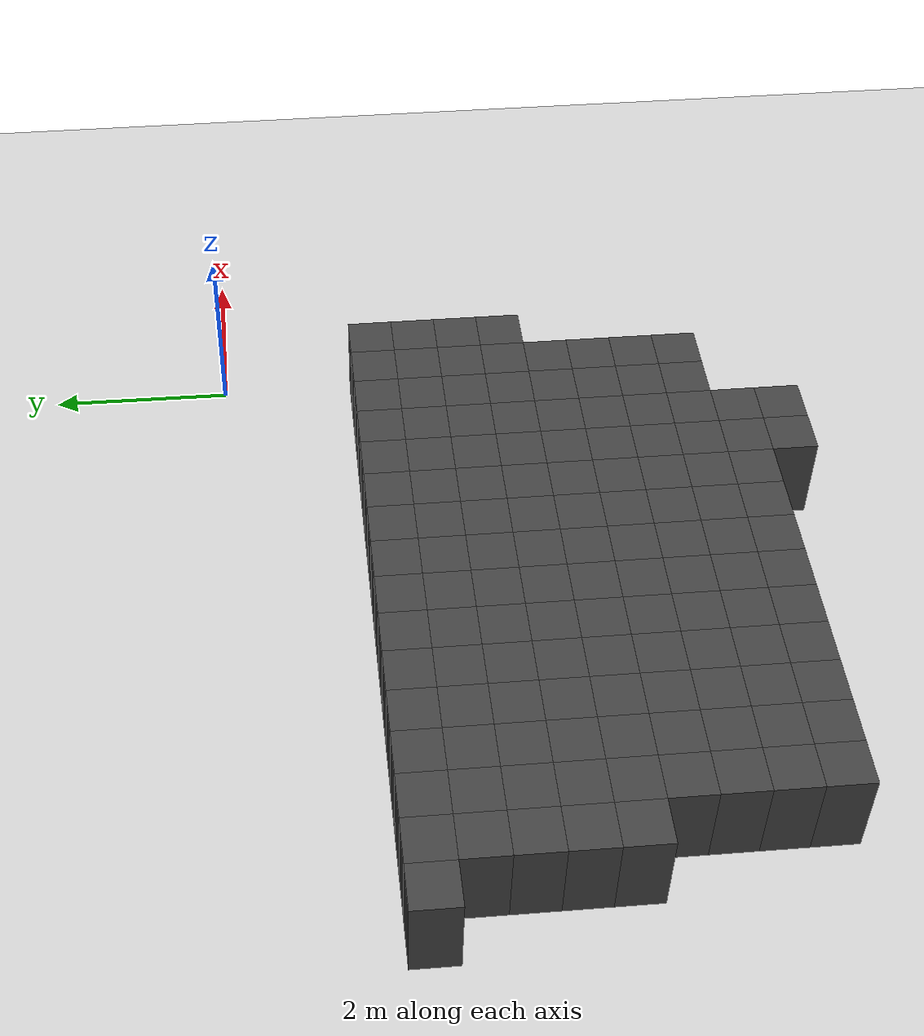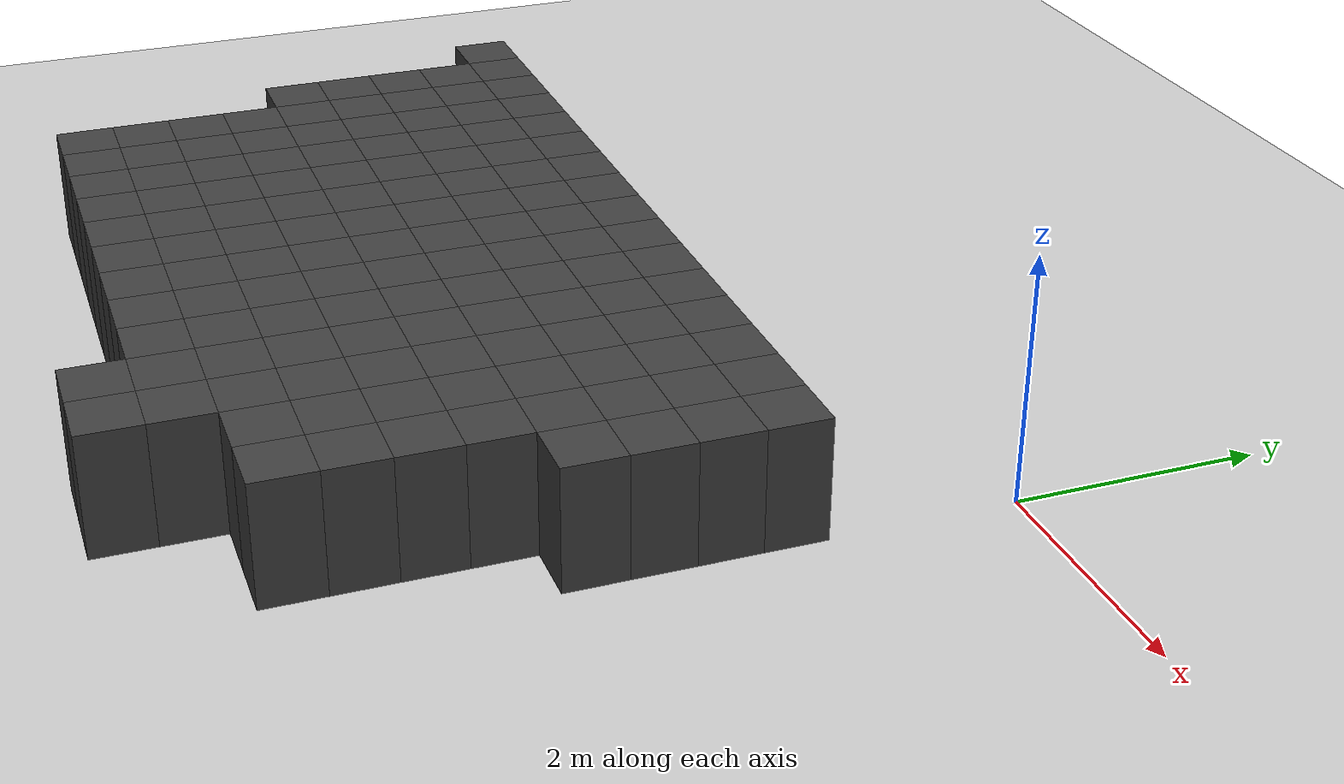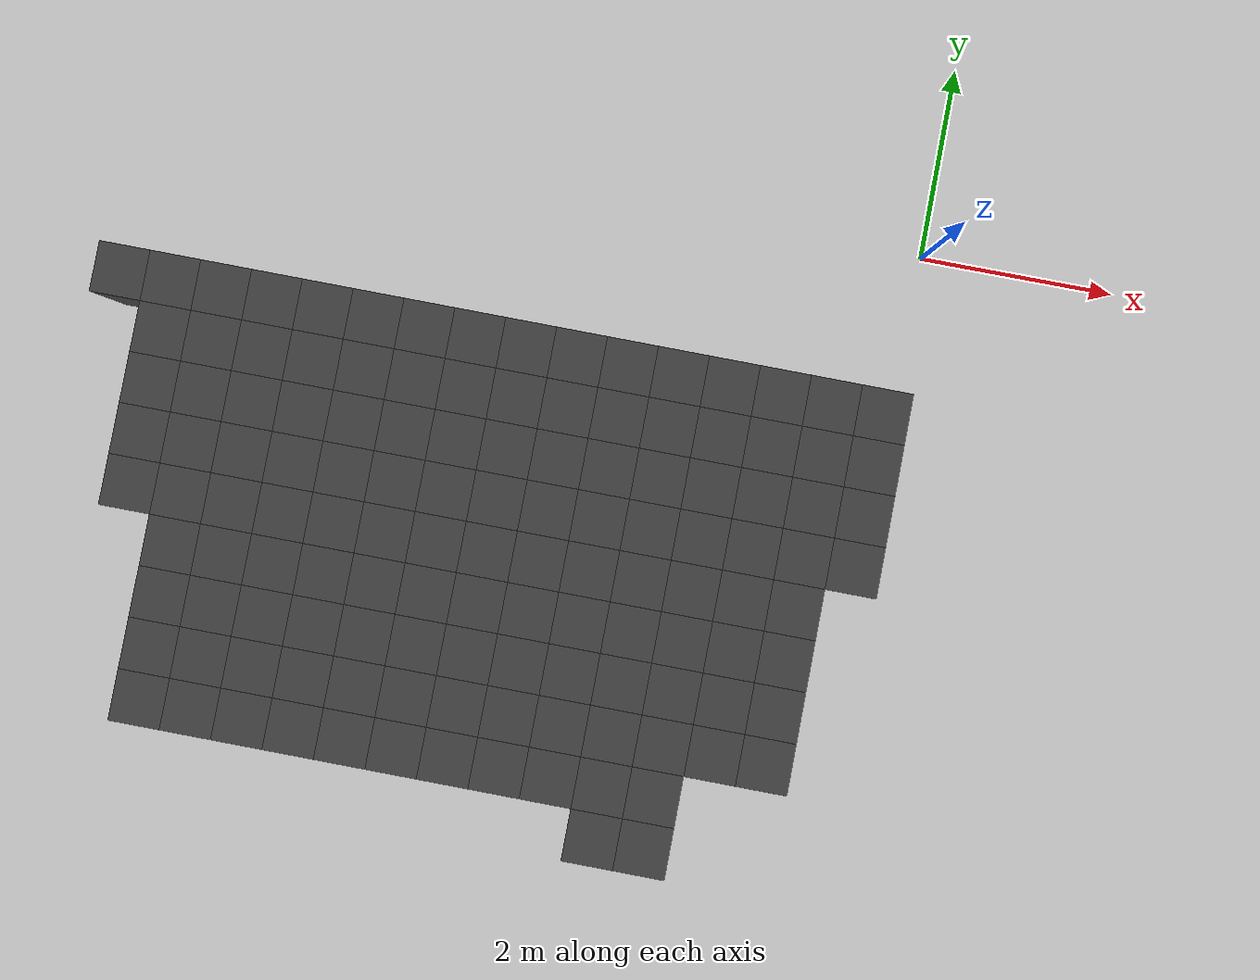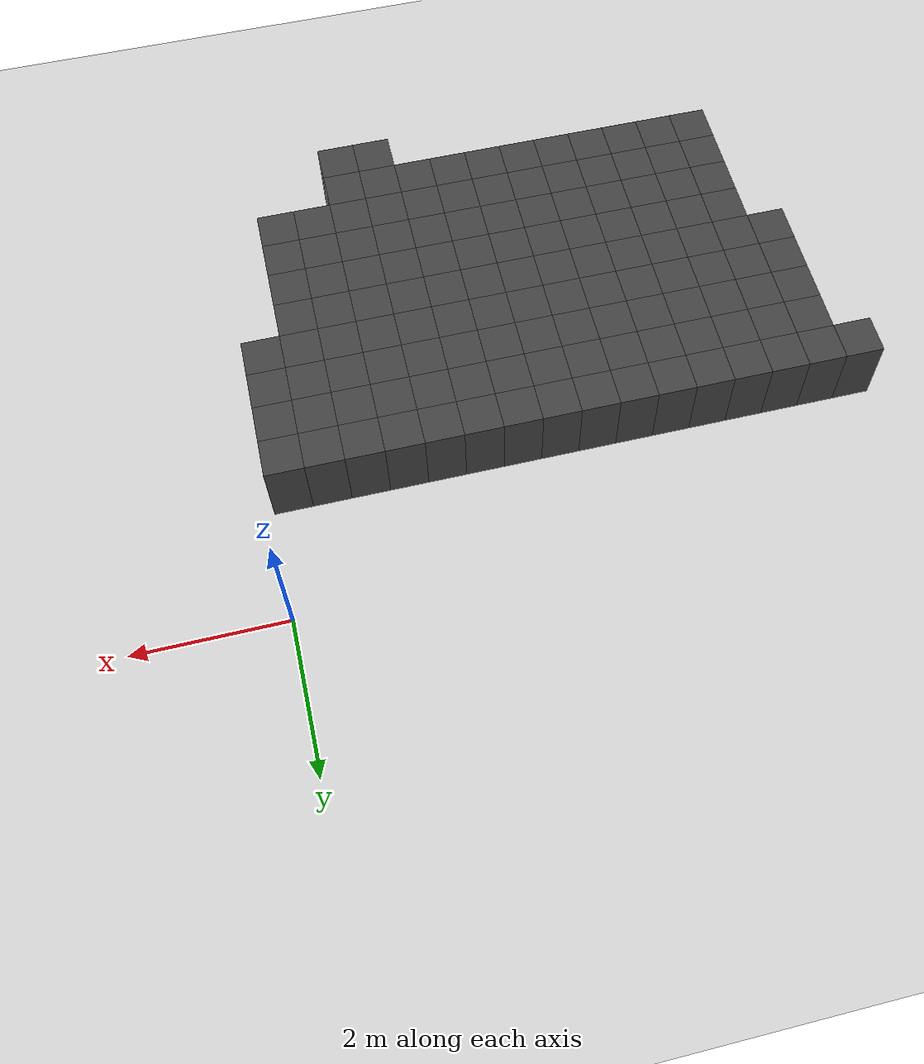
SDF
<sdf version="1.7">
 <world name="map_14056">
  <model name="ground_plane">
   <static>true</static>
   <link name="link">
    <collision name="collision">
     <geometry><plane><normal>0 0 1</normal><size>200 200</size></plane></geometry>
    </collision>
    <visual name="visual">
     <geometry><plane><normal>0 0 1</normal><size>200 200</size></plane></geometry>
     <material><ambient>0.8 0.8 0.8 1</ambient><diffuse>0.8 0.8 0.8 1</diffuse></material>
    </visual>
   </link>
  </model>
  <model name="maze_environment">
   <static>true</static>
   <link name="wall_1009">
    <pose>-7.750 -1.750 0.500 0 0 0</pose>
    <collision name="col"><geometry><box><size>0.5 0.5 1.0</size></box></geometry></collision>
    <visual name="vis">
     <geometry><box><size>0.5 0.5 1.0</size></box></geometry>
     <material><ambient>0.15 0.15 0.15 1</ambient><diffuse>0.25 0.25 0.25 1</diffuse></material>
    </visual>
   </link>
   <link name="wall_1010">
    <pose>-7.250 -1.750 0.500 0 0 0</pose>
    <collision name="col"><geometry><box><size>0.5 0.5 1.0</size></box></geometry></collision>
    <visual name="vis">
     <geometry><box><size>0.5 0.5 1.0</size></box></geometry>
     <material><ambient>0.15 0.15 0.15 1</ambient><diffuse>0.25 0.25 0.25 1</diffuse></material>
    </visual>
   </link>
   <link name="wall_1011">
    <pose>-6.750 -1.750 0.500 0 0 0</pose>
    <collision name="col"><geometry><box><size>0.5 0.5 1.0</size></box></geometry></collision>
    <visual name="vis">
     <geometry><box><size>0.5 0.5 1.0</size></box></geometry>
     <material><ambient>0.15 0.15 0.15 1</ambient><diffuse>0.25 0.25 0.25 1</diffuse></material>
    </visual>
   </link>
   <link name="wall_1012">
    <pose>-6.250 -1.750 0.500 0 0 0</pose>
    <collision name="col"><geometry><box><size>0.5 0.5 1.0</size></box></geometry></collision>
    <visual name="vis">
     <geometry><box><size>0.5 0.5 1.0</size></box></geometry>
     <material><ambient>0.15 0.15 0.15 1</ambient><diffuse>0.25 0.25 0.25 1</diffuse></material>
    </visual>
   </link>
   <link name="wall_1013">
    <pose>-5.750 -1.750 0.500 0 0 0</pose>
    <collision name="col"><geometry><box><size>0.5 0.5 1.0</size></box></geometry></collision>
    <visual name="vis">
     <geometry><box><size>0.5 0.5 1.0</size></box></geometry>
     <material><ambient>0.15 0.15 0.15 1</ambient><diffuse>0.25 0.25 0.25 1</diffuse></material>
    </visual>
   </link>
   <link name="wall_1014">
    <pose>-5.250 -1.750 0.500 0 0 0</pose>
    <collision name="col"><geometry><box><size>0.5 0.5 1.0</size></box></geometry></collision>
    <visual name="vis">
     <geometry><box><size>0.5 0.5 1.0</size></box></geometry>
     <material><ambient>0.15 0.15 0.15 1</ambient><diffuse>0.25 0.25 0.25 1</diffuse></material>
    </visual>
   </link>
   <link name="wall_1015">
    <pose>-4.750 -1.750 0.500 0 0 0</pose>
    <collision name="col"><geometry><box><size>0.5 0.5 1.0</size></box></geometry></collision>
    <visual name="vis">
     <geometry><box><size>0.5 0.5 1.0</size></box></geometry>
     <material><ambient>0.15 0.15 0.15 1</ambient><diffuse>0.25 0.25 0.25 1</diffuse></material>
    </visual>
   </link>
   <link name="wall_1016">
    <pose>-4.250 -1.750 0.500 0 0 0</pose>
    <collision name="col"><geometry><box><size>0.5 0.5 1.0</size></box></geometry></collision>
    <visual name="vis">
     <geometry><box><size>0.5 0.5 1.0</size></box></geometry>
     <material><ambient>0.15 0.15 0.15 1</ambient><diffuse>0.25 0.25 0.25 1</diffuse></material>
    </visual>
   </link>
   <link name="wall_1017">
    <pose>-3.750 -1.750 0.500 0 0 0</pose>
    <collision name="col"><geometry><box><size>0.5 0.5 1.0</size></box></geometry></collision>
    <visual name="vis">
     <geometry><box><size>0.5 0.5 1.0</size></box></geometry>
     <material><ambient>0.15 0.15 0.15 1</ambient><diffuse>0.25 0.25 0.25 1</diffuse></material>
    </visual>
   </link>
   <link name="wall_1018">
    <pose>-3.250 -1.750 0.500 0 0 0</pose>
    <collision name="col"><geometry><box><size>0.5 0.5 1.0</size></box></geometry></collision>
    <visual name="vis">
     <geometry><box><size>0.5 0.5 1.0</size></box></geometry>
     <material><ambient>0.15 0.15 0.15 1</ambient><diffuse>0.25 0.25 0.25 1</diffuse></material>
    </visual>
   </link>
   <link name="wall_1019">
    <pose>-2.750 -1.750 0.500 0 0 0</pose>
    <collision name="col"><geometry><box><size>0.5 0.5 1.0</size></box></geometry></collision>
    <visual name="vis">
     <geometry><box><size>0.5 0.5 1.0</size></box></geometry>
     <material><ambient>0.15 0.15 0.15 1</ambient><diffuse>0.25 0.25 0.25 1</diffuse></material>
    </visual>
   </link>
   <link name="wall_1020">
    <pose>-2.250 -1.750 0.500 0 0 0</pose>
    <collision name="col"><geometry><box><size>0.5 0.5 1.0</size></box></geometry></collision>
    <visual name="vis">
     <geometry><box><size>0.5 0.5 1.0</size></box></geometry>
     <material><ambient>0.15 0.15 0.15 1</ambient><diffuse>0.25 0.25 0.25 1</diffuse></material>
    </visual>
   </link>
   <link name="wall_1021">
    <pose>-1.750 -1.750 0.500 0 0 0</pose>
    <collision name="col"><geometry><box><size>0.5 0.5 1.0</size></box></geometry></collision>
    <visual name="vis">
     <geometry><box><size>0.5 0.5 1.0</size></box></geometry>
     <material><ambient>0.15 0.15 0.15 1</ambient><diffuse>0.25 0.25 0.25 1</diffuse></material>
    </visual>
   </link>
   <link name="wall_1022">
    <pose>-1.250 -1.750 0.500 0 0 0</pose>
    <collision name="col"><geometry><box><size>0.5 0.5 1.0</size></box></geometry></collision>
    <visual name="vis">
     <geometry><box><size>0.5 0.5 1.0</size></box></geometry>
     <material><ambient>0.15 0.15 0.15 1</ambient><diffuse>0.25 0.25 0.25 1</diffuse></material>
    </visual>
   </link>
   <link name="wall_1023">
    <pose>-0.750 -1.750 0.500 0 0 0</pose>
    <collision name="col"><geometry><box><size>0.5 0.5 1.0</size></box></geometry></collision>
    <visual name="vis">
     <geometry><box><size>0.5 0.5 1.0</size></box></geometry>
     <material><ambient>0.15 0.15 0.15 1</ambient><diffuse>0.25 0.25 0.25 1</diffuse></material>
    </visual>
   </link>
   <link name="wall_1024">
    <pose>-0.250 -1.750 0.500 0 0 0</pose>
    <collision name="col"><geometry><box><size>0.5 0.5 1.0</size></box></geometry></collision>
    <visual name="vis">
     <geometry><box><size>0.5 0.5 1.0</size></box></geometry>
     <material><ambient>0.15 0.15 0.15 1</ambient><diffuse>0.25 0.25 0.25 1</diffuse></material>
    </visual>
   </link>
   <link name="wall_1051">
    <pose>-7.250 -2.250 0.500 0 0 0</pose>
    <collision name="col"><geometry><box><size>0.5 0.5 1.0</size></box></geometry></collision>
    <visual name="vis">
     <geometry><box><size>0.5 0.5 1.0</size></box></geometry>
     <material><ambient>0.15 0.15 0.15 1</ambient><diffuse>0.25 0.25 0.25 1</diffuse></material>
    </visual>
   </link>
   <link name="wall_1052">
    <pose>-6.750 -2.250 0.500 0 0 0</pose>
    <collision name="col"><geometry><box><size>0.5 0.5 1.0</size></box></geometry></collision>
    <visual name="vis">
     <geometry><box><size>0.5 0.5 1.0</size></box></geometry>
     <material><ambient>0.15 0.15 0.15 1</ambient><diffuse>0.25 0.25 0.25 1</diffuse></material>
    </visual>
   </link>
   <link name="wall_1053">
    <pose>-6.250 -2.250 0.500 0 0 0</pose>
    <collision name="col"><geometry><box><size>0.5 0.5 1.0</size></box></geometry></collision>
    <visual name="vis">
     <geometry><box><size>0.5 0.5 1.0</size></box></geometry>
     <material><ambient>0.15 0.15 0.15 1</ambient><diffuse>0.25 0.25 0.25 1</diffuse></material>
    </visual>
   </link>
   <link name="wall_1054">
    <pose>-5.750 -2.250 0.500 0 0 0</pose>
    <collision name="col"><geometry><box><size>0.5 0.5 1.0</size></box></geometry></collision>
    <visual name="vis">
     <geometry><box><size>0.5 0.5 1.0</size></box></geometry>
     <material><ambient>0.15 0.15 0.15 1</ambient><diffuse>0.25 0.25 0.25 1</diffuse></material>
    </visual>
   </link>
   <link name="wall_1055">
    <pose>-5.250 -2.250 0.500 0 0 0</pose>
    <collision name="col"><geometry><box><size>0.5 0.5 1.0</size></box></geometry></collision>
    <visual name="vis">
     <geometry><box><size>0.5 0.5 1.0</size></box></geometry>
     <material><ambient>0.15 0.15 0.15 1</ambient><diffuse>0.25 0.25 0.25 1</diffuse></material>
    </visual>
   </link>
   <link name="wall_1056">
    <pose>-4.750 -2.250 0.500 0 0 0</pose>
    <collision name="col"><geometry><box><size>0.5 0.5 1.0</size></box></geometry></collision>
    <visual name="vis">
     <geometry><box><size>0.5 0.5 1.0</size></box></geometry>
     <material><ambient>0.15 0.15 0.15 1</ambient><diffuse>0.25 0.25 0.25 1</diffuse></material>
    </visual>
   </link>
   <link name="wall_1057">
    <pose>-4.250 -2.250 0.500 0 0 0</pose>
    <collision name="col"><geometry><box><size>0.5 0.5 1.0</size></box></geometry></collision>
    <visual name="vis">
     <geometry><box><size>0.5 0.5 1.0</size></box></geometry>
     <material><ambient>0.15 0.15 0.15 1</ambient><diffuse>0.25 0.25 0.25 1</diffuse></material>
    </visual>
   </link>
   <link name="wall_1058">
    <pose>-3.750 -2.250 0.500 0 0 0</pose>
    <collision name="col"><geometry><box><size>0.5 0.5 1.0</size></box></geometry></collision>
    <visual name="vis">
     <geometry><box><size>0.5 0.5 1.0</size></box></geometry>
     <material><ambient>0.15 0.15 0.15 1</ambient><diffuse>0.25 0.25 0.25 1</diffuse></material>
    </visual>
   </link>
   <link name="wall_1059">
    <pose>-3.250 -2.250 0.500 0 0 0</pose>
    <collision name="col"><geometry><box><size>0.5 0.5 1.0</size></box></geometry></collision>
    <visual name="vis">
     <geometry><box><size>0.5 0.5 1.0</size></box></geometry>
     <material><ambient>0.15 0.15 0.15 1</ambient><diffuse>0.25 0.25 0.25 1</diffuse></material>
    </visual>
   </link>
   <link name="wall_1060">
    <pose>-2.750 -2.250 0.500 0 0 0</pose>
    <collision name="col"><geometry><box><size>0.5 0.5 1.0</size></box></geometry></collision>
    <visual name="vis">
     <geometry><box><size>0.5 0.5 1.0</size></box></geometry>
     <material><ambient>0.15 0.15 0.15 1</ambient><diffuse>0.25 0.25 0.25 1</diffuse></material>
    </visual>
   </link>
   <link name="wall_1061">
    <pose>-2.250 -2.250 0.500 0 0 0</pose>
    <collision name="col"><geometry><box><size>0.5 0.5 1.0</size></box></geometry></collision>
    <visual name="vis">
     <geometry><box><size>0.5 0.5 1.0</size></box></geometry>
     <material><ambient>0.15 0.15 0.15 1</ambient><diffuse>0.25 0.25 0.25 1</diffuse></material>
    </visual>
   </link>
   <link name="wall_1062">
    <pose>-1.750 -2.250 0.500 0 0 0</pose>
    <collision name="col"><geometry><box><size>0.5 0.5 1.0</size></box></geometry></collision>
    <visual name="vis">
     <geometry><box><size>0.5 0.5 1.0</size></box></geometry>
     <material><ambient>0.15 0.15 0.15 1</ambient><diffuse>0.25 0.25 0.25 1</diffuse></material>
    </visual>
   </link>
   <link name="wall_1063">
    <pose>-1.250 -2.250 0.500 0 0 0</pose>
    <collision name="col"><geometry><box><size>0.5 0.5 1.0</size></box></geometry></collision>
    <visual name="vis">
     <geometry><box><size>0.5 0.5 1.0</size></box></geometry>
     <material><ambient>0.15 0.15 0.15 1</ambient><diffuse>0.25 0.25 0.25 1</diffuse></material>
    </visual>
   </link>
   <link name="wall_1064">
    <pose>-0.750 -2.250 0.500 0 0 0</pose>
    <collision name="col"><geometry><box><size>0.5 0.5 1.0</size></box></geometry></collision>
    <visual name="vis">
     <geometry><box><size>0.5 0.5 1.0</size></box></geometry>
     <material><ambient>0.15 0.15 0.15 1</ambient><diffuse>0.25 0.25 0.25 1</diffuse></material>
    </visual>
   </link>
   <link name="wall_1065">
    <pose>-0.250 -2.250 0.500 0 0 0</pose>
    <collision name="col"><geometry><box><size>0.5 0.5 1.0</size></box></geometry></collision>
    <visual name="vis">
     <geometry><box><size>0.5 0.5 1.0</size></box></geometry>
     <material><ambient>0.15 0.15 0.15 1</ambient><diffuse>0.25 0.25 0.25 1</diffuse></material>
    </visual>
   </link>
   <link name="wall_1079">
    <pose>-7.250 -2.750 0.500 0 0 0</pose>
    <collision name="col"><geometry><box><size>0.5 0.5 1.0</size></box></geometry></collision>
    <visual name="vis">
     <geometry><box><size>0.5 0.5 1.0</size></box></geometry>
     <material><ambient>0.15 0.15 0.15 1</ambient><diffuse>0.25 0.25 0.25 1</diffuse></material>
    </visual>
   </link>
   <link name="wall_1080">
    <pose>-6.750 -2.750 0.500 0 0 0</pose>
    <collision name="col"><geometry><box><size>0.5 0.5 1.0</size></box></geometry></collision>
    <visual name="vis">
     <geometry><box><size>0.5 0.5 1.0</size></box></geometry>
     <material><ambient>0.15 0.15 0.15 1</ambient><diffuse>0.25 0.25 0.25 1</diffuse></material>
    </visual>
   </link>
   <link name="wall_1081">
    <pose>-6.250 -2.750 0.500 0 0 0</pose>
    <collision name="col"><geometry><box><size>0.5 0.5 1.0</size></box></geometry></collision>
    <visual name="vis">
     <geometry><box><size>0.5 0.5 1.0</size></box></geometry>
     <material><ambient>0.15 0.15 0.15 1</ambient><diffuse>0.25 0.25 0.25 1</diffuse></material>
    </visual>
   </link>
   <link name="wall_1082">
    <pose>-5.750 -2.750 0.500 0 0 0</pose>
    <collision name="col"><geometry><box><size>0.5 0.5 1.0</size></box></geometry></collision>
    <visual name="vis">
     <geometry><box><size>0.5 0.5 1.0</size></box></geometry>
     <material><ambient>0.15 0.15 0.15 1</ambient><diffuse>0.25 0.25 0.25 1</diffuse></material>
    </visual>
   </link>
   <link name="wall_1083">
    <pose>-5.250 -2.750 0.500 0 0 0</pose>
    <collision name="col"><geometry><box><size>0.5 0.5 1.0</size></box></geometry></collision>
    <visual name="vis">
     <geometry><box><size>0.5 0.5 1.0</size></box></geometry>
     <material><ambient>0.15 0.15 0.15 1</ambient><diffuse>0.25 0.25 0.25 1</diffuse></material>
    </visual>
   </link>
   <link name="wall_1084">
    <pose>-4.750 -2.750 0.500 0 0 0</pose>
    <collision name="col"><geometry><box><size>0.5 0.5 1.0</size></box></geometry></collision>
    <visual name="vis">
     <geometry><box><size>0.5 0.5 1.0</size></box></geometry>
     <material><ambient>0.15 0.15 0.15 1</ambient><diffuse>0.25 0.25 0.25 1</diffuse></material>
    </visual>
   </link>
   <link name="wall_1085">
    <pose>-4.250 -2.750 0.500 0 0 0</pose>
    <collision name="col"><geometry><box><size>0.5 0.5 1.0</size></box></geometry></collision>
    <visual name="vis">
     <geometry><box><size>0.5 0.5 1.0</size></box></geometry>
     <material><ambient>0.15 0.15 0.15 1</ambient><diffuse>0.25 0.25 0.25 1</diffuse></material>
    </visual>
   </link>
   <link name="wall_1086">
    <pose>-3.750 -2.750 0.500 0 0 0</pose>
    <collision name="col"><geometry><box><size>0.5 0.5 1.0</size></box></geometry></collision>
    <visual name="vis">
     <geometry><box><size>0.5 0.5 1.0</size></box></geometry>
     <material><ambient>0.15 0.15 0.15 1</ambient><diffuse>0.25 0.25 0.25 1</diffuse></material>
    </visual>
   </link>
   <link name="wall_1087">
    <pose>-3.250 -2.750 0.500 0 0 0</pose>
    <collision name="col"><geometry><box><size>0.5 0.5 1.0</size></box></geometry></collision>
    <visual name="vis">
     <geometry><box><size>0.5 0.5 1.0</size></box></geometry>
     <material><ambient>0.15 0.15 0.15 1</ambient><diffuse>0.25 0.25 0.25 1</diffuse></material>
    </visual>
   </link>
   <link name="wall_1088">
    <pose>-2.750 -2.750 0.500 0 0 0</pose>
    <collision name="col"><geometry><box><size>0.5 0.5 1.0</size></box></geometry></collision>
    <visual name="vis">
     <geometry><box><size>0.5 0.5 1.0</size></box></geometry>
     <material><ambient>0.15 0.15 0.15 1</ambient><diffuse>0.25 0.25 0.25 1</diffuse></material>
    </visual>
   </link>
   <link name="wall_1089">
    <pose>-2.250 -2.750 0.500 0 0 0</pose>
    <collision name="col"><geometry><box><size>0.5 0.5 1.0</size></box></geometry></collision>
    <visual name="vis">
     <geometry><box><size>0.5 0.5 1.0</size></box></geometry>
     <material><ambient>0.15 0.15 0.15 1</ambient><diffuse>0.25 0.25 0.25 1</diffuse></material>
    </visual>
   </link>
   <link name="wall_1090">
    <pose>-1.750 -2.750 0.500 0 0 0</pose>
    <collision name="col"><geometry><box><size>0.5 0.5 1.0</size></box></geometry></collision>
    <visual name="vis">
     <geometry><box><size>0.5 0.5 1.0</size></box></geometry>
     <material><ambient>0.15 0.15 0.15 1</ambient><diffuse>0.25 0.25 0.25 1</diffuse></material>
    </visual>
   </link>
   <link name="wall_1091">
    <pose>-1.250 -2.750 0.500 0 0 0</pose>
    <collision name="col"><geometry><box><size>0.5 0.5 1.0</size></box></geometry></collision>
    <visual name="vis">
     <geometry><box><size>0.5 0.5 1.0</size></box></geometry>
     <material><ambient>0.15 0.15 0.15 1</ambient><diffuse>0.25 0.25 0.25 1</diffuse></material>
    </visual>
   </link>
   <link name="wall_1092">
    <pose>-0.750 -2.750 0.500 0 0 0</pose>
    <collision name="col"><geometry><box><size>0.5 0.5 1.0</size></box></geometry></collision>
    <visual name="vis">
     <geometry><box><size>0.5 0.5 1.0</size></box></geometry>
     <material><ambient>0.15 0.15 0.15 1</ambient><diffuse>0.25 0.25 0.25 1</diffuse></material>
    </visual>
   </link>
   <link name="wall_1093">
    <pose>-0.250 -2.750 0.500 0 0 0</pose>
    <collision name="col"><geometry><box><size>0.5 0.5 1.0</size></box></geometry></collision>
    <visual name="vis">
     <geometry><box><size>0.5 0.5 1.0</size></box></geometry>
     <material><ambient>0.15 0.15 0.15 1</ambient><diffuse>0.25 0.25 0.25 1</diffuse></material>
    </visual>
   </link>
   <link name="wall_1107">
    <pose>-7.250 -3.250 0.500 0 0 0</pose>
    <collision name="col"><geometry><box><size>0.5 0.5 1.0</size></box></geometry></collision>
    <visual name="vis">
     <geometry><box><size>0.5 0.5 1.0</size></box></geometry>
     <material><ambient>0.15 0.15 0.15 1</ambient><diffuse>0.25 0.25 0.25 1</diffuse></material>
    </visual>
   </link>
   <link name="wall_1108">
    <pose>-6.750 -3.250 0.500 0 0 0</pose>
    <collision name="col"><geometry><box><size>0.5 0.5 1.0</size></box></geometry></collision>
    <visual name="vis">
     <geometry><box><size>0.5 0.5 1.0</size></box></geometry>
     <material><ambient>0.15 0.15 0.15 1</ambient><diffuse>0.25 0.25 0.25 1</diffuse></material>
    </visual>
   </link>
   <link name="wall_1109">
    <pose>-6.250 -3.250 0.500 0 0 0</pose>
    <collision name="col"><geometry><box><size>0.5 0.5 1.0</size></box></geometry></collision>
    <visual name="vis">
     <geometry><box><size>0.5 0.5 1.0</size></box></geometry>
     <material><ambient>0.15 0.15 0.15 1</ambient><diffuse>0.25 0.25 0.25 1</diffuse></material>
    </visual>
   </link>
   <link name="wall_1110">
    <pose>-5.750 -3.250 0.500 0 0 0</pose>
    <collision name="col"><geometry><box><size>0.5 0.5 1.0</size></box></geometry></collision>
    <visual name="vis">
     <geometry><box><size>0.5 0.5 1.0</size></box></geometry>
     <material><ambient>0.15 0.15 0.15 1</ambient><diffuse>0.25 0.25 0.25 1</diffuse></material>
    </visual>
   </link>
   <link name="wall_1111">
    <pose>-5.250 -3.250 0.500 0 0 0</pose>
    <collision name="col"><geometry><box><size>0.5 0.5 1.0</size></box></geometry></collision>
    <visual name="vis">
     <geometry><box><size>0.5 0.5 1.0</size></box></geometry>
     <material><ambient>0.15 0.15 0.15 1</ambient><diffuse>0.25 0.25 0.25 1</diffuse></material>
    </visual>
   </link>
   <link name="wall_1112">
    <pose>-4.750 -3.250 0.500 0 0 0</pose>
    <collision name="col"><geometry><box><size>0.5 0.5 1.0</size></box></geometry></collision>
    <visual name="vis">
     <geometry><box><size>0.5 0.5 1.0</size></box></geometry>
     <material><ambient>0.15 0.15 0.15 1</ambient><diffuse>0.25 0.25 0.25 1</diffuse></material>
    </visual>
   </link>
   <link name="wall_1113">
    <pose>-4.250 -3.250 0.500 0 0 0</pose>
    <collision name="col"><geometry><box><size>0.5 0.5 1.0</size></box></geometry></collision>
    <visual name="vis">
     <geometry><box><size>0.5 0.5 1.0</size></box></geometry>
     <material><ambient>0.15 0.15 0.15 1</ambient><diffuse>0.25 0.25 0.25 1</diffuse></material>
    </visual>
   </link>
   <link name="wall_1114">
    <pose>-3.750 -3.250 0.500 0 0 0</pose>
    <collision name="col"><geometry><box><size>0.5 0.5 1.0</size></box></geometry></collision>
    <visual name="vis">
     <geometry><box><size>0.5 0.5 1.0</size></box></geometry>
     <material><ambient>0.15 0.15 0.15 1</ambient><diffuse>0.25 0.25 0.25 1</diffuse></material>
    </visual>
   </link>
   <link name="wall_1115">
    <pose>-3.250 -3.250 0.500 0 0 0</pose>
    <collision name="col"><geometry><box><size>0.5 0.5 1.0</size></box></geometry></collision>
    <visual name="vis">
     <geometry><box><size>0.5 0.5 1.0</size></box></geometry>
     <material><ambient>0.15 0.15 0.15 1</ambient><diffuse>0.25 0.25 0.25 1</diffuse></material>
    </visual>
   </link>
   <link name="wall_1116">
    <pose>-2.750 -3.250 0.500 0 0 0</pose>
    <collision name="col"><geometry><box><size>0.5 0.5 1.0</size></box></geometry></collision>
    <visual name="vis">
     <geometry><box><size>0.5 0.5 1.0</size></box></geometry>
     <material><ambient>0.15 0.15 0.15 1</ambient><diffuse>0.25 0.25 0.25 1</diffuse></material>
    </visual>
   </link>
   <link name="wall_1117">
    <pose>-2.250 -3.250 0.500 0 0 0</pose>
    <collision name="col"><geometry><box><size>0.5 0.5 1.0</size></box></geometry></collision>
    <visual name="vis">
     <geometry><box><size>0.5 0.5 1.0</size></box></geometry>
     <material><ambient>0.15 0.15 0.15 1</ambient><diffuse>0.25 0.25 0.25 1</diffuse></material>
    </visual>
   </link>
   <link name="wall_1118">
    <pose>-1.750 -3.250 0.500 0 0 0</pose>
    <collision name="col"><geometry><box><size>0.5 0.5 1.0</size></box></geometry></collision>
    <visual name="vis">
     <geometry><box><size>0.5 0.5 1.0</size></box></geometry>
     <material><ambient>0.15 0.15 0.15 1</ambient><diffuse>0.25 0.25 0.25 1</diffuse></material>
    </visual>
   </link>
   <link name="wall_1119">
    <pose>-1.250 -3.250 0.500 0 0 0</pose>
    <collision name="col"><geometry><box><size>0.5 0.5 1.0</size></box></geometry></collision>
    <visual name="vis">
     <geometry><box><size>0.5 0.5 1.0</size></box></geometry>
     <material><ambient>0.15 0.15 0.15 1</ambient><diffuse>0.25 0.25 0.25 1</diffuse></material>
    </visual>
   </link>
   <link name="wall_1120">
    <pose>-0.750 -3.250 0.500 0 0 0</pose>
    <collision name="col"><geometry><box><size>0.5 0.5 1.0</size></box></geometry></collision>
    <visual name="vis">
     <geometry><box><size>0.5 0.5 1.0</size></box></geometry>
     <material><ambient>0.15 0.15 0.15 1</ambient><diffuse>0.25 0.25 0.25 1</diffuse></material>
    </visual>
   </link>
   <link name="wall_1121">
    <pose>-0.250 -3.250 0.500 0 0 0</pose>
    <collision name="col"><geometry><box><size>0.5 0.5 1.0</size></box></geometry></collision>
    <visual name="vis">
     <geometry><box><size>0.5 0.5 1.0</size></box></geometry>
     <material><ambient>0.15 0.15 0.15 1</ambient><diffuse>0.25 0.25 0.25 1</diffuse></material>
    </visual>
   </link>
   <link name="wall_1135">
    <pose>-7.250 -3.750 0.500 0 0 0</pose>
    <collision name="col"><geometry><box><size>0.5 0.5 1.0</size></box></geometry></collision>
    <visual name="vis">
     <geometry><box><size>0.5 0.5 1.0</size></box></geometry>
     <material><ambient>0.15 0.15 0.15 1</ambient><diffuse>0.25 0.25 0.25 1</diffuse></material>
    </visual>
   </link>
   <link name="wall_1136">
    <pose>-6.750 -3.750 0.500 0 0 0</pose>
    <collision name="col"><geometry><box><size>0.5 0.5 1.0</size></box></geometry></collision>
    <visual name="vis">
     <geometry><box><size>0.5 0.5 1.0</size></box></geometry>
     <material><ambient>0.15 0.15 0.15 1</ambient><diffuse>0.25 0.25 0.25 1</diffuse></material>
    </visual>
   </link>
   <link name="wall_1137">
    <pose>-6.250 -3.750 0.500 0 0 0</pose>
    <collision name="col"><geometry><box><size>0.5 0.5 1.0</size></box></geometry></collision>
    <visual name="vis">
     <geometry><box><size>0.5 0.5 1.0</size></box></geometry>
     <material><ambient>0.15 0.15 0.15 1</ambient><diffuse>0.25 0.25 0.25 1</diffuse></material>
    </visual>
   </link>
   <link name="wall_1138">
    <pose>-5.750 -3.750 0.500 0 0 0</pose>
    <collision name="col"><geometry><box><size>0.5 0.5 1.0</size></box></geometry></collision>
    <visual name="vis">
     <geometry><box><size>0.5 0.5 1.0</size></box></geometry>
     <material><ambient>0.15 0.15 0.15 1</ambient><diffuse>0.25 0.25 0.25 1</diffuse></material>
    </visual>
   </link>
   <link name="wall_1139">
    <pose>-5.250 -3.750 0.500 0 0 0</pose>
    <collision name="col"><geometry><box><size>0.5 0.5 1.0</size></box></geometry></collision>
    <visual name="vis">
     <geometry><box><size>0.5 0.5 1.0</size></box></geometry>
     <material><ambient>0.15 0.15 0.15 1</ambient><diffuse>0.25 0.25 0.25 1</diffuse></material>
    </visual>
   </link>
   <link name="wall_1140">
    <pose>-4.750 -3.750 0.500 0 0 0</pose>
    <collision name="col"><geometry><box><size>0.5 0.5 1.0</size></box></geometry></collision>
    <visual name="vis">
     <geometry><box><size>0.5 0.5 1.0</size></box></geometry>
     <material><ambient>0.15 0.15 0.15 1</ambient><diffuse>0.25 0.25 0.25 1</diffuse></material>
    </visual>
   </link>
   <link name="wall_1141">
    <pose>-4.250 -3.750 0.500 0 0 0</pose>
    <collision name="col"><geometry><box><size>0.5 0.5 1.0</size></box></geometry></collision>
    <visual name="vis">
     <geometry><box><size>0.5 0.5 1.0</size></box></geometry>
     <material><ambient>0.15 0.15 0.15 1</ambient><diffuse>0.25 0.25 0.25 1</diffuse></material>
    </visual>
   </link>
   <link name="wall_1142">
    <pose>-3.750 -3.750 0.500 0 0 0</pose>
    <collision name="col"><geometry><box><size>0.5 0.5 1.0</size></box></geometry></collision>
    <visual name="vis">
     <geometry><box><size>0.5 0.5 1.0</size></box></geometry>
     <material><ambient>0.15 0.15 0.15 1</ambient><diffuse>0.25 0.25 0.25 1</diffuse></material>
    </visual>
   </link>
   <link name="wall_1143">
    <pose>-3.250 -3.750 0.500 0 0 0</pose>
    <collision name="col"><geometry><box><size>0.5 0.5 1.0</size></box></geometry></collision>
    <visual name="vis">
     <geometry><box><size>0.5 0.5 1.0</size></box></geometry>
     <material><ambient>0.15 0.15 0.15 1</ambient><diffuse>0.25 0.25 0.25 1</diffuse></material>
    </visual>
   </link>
   <link name="wall_1144">
    <pose>-2.750 -3.750 0.500 0 0 0</pose>
    <collision name="col"><geometry><box><size>0.5 0.5 1.0</size></box></geometry></collision>
    <visual name="vis">
     <geometry><box><size>0.5 0.5 1.0</size></box></geometry>
     <material><ambient>0.15 0.15 0.15 1</ambient><diffuse>0.25 0.25 0.25 1</diffuse></material>
    </visual>
   </link>
   <link name="wall_1145">
    <pose>-2.250 -3.750 0.500 0 0 0</pose>
    <collision name="col"><geometry><box><size>0.5 0.5 1.0</size></box></geometry></collision>
    <visual name="vis">
     <geometry><box><size>0.5 0.5 1.0</size></box></geometry>
     <material><ambient>0.15 0.15 0.15 1</ambient><diffuse>0.25 0.25 0.25 1</diffuse></material>
    </visual>
   </link>
   <link name="wall_1146">
    <pose>-1.750 -3.750 0.500 0 0 0</pose>
    <collision name="col"><geometry><box><size>0.5 0.5 1.0</size></box></geometry></collision>
    <visual name="vis">
     <geometry><box><size>0.5 0.5 1.0</size></box></geometry>
     <material><ambient>0.15 0.15 0.15 1</ambient><diffuse>0.25 0.25 0.25 1</diffuse></material>
    </visual>
   </link>
   <link name="wall_1147">
    <pose>-1.250 -3.750 0.500 0 0 0</pose>
    <collision name="col"><geometry><box><size>0.5 0.5 1.0</size></box></geometry></collision>
    <visual name="vis">
     <geometry><box><size>0.5 0.5 1.0</size></box></geometry>
     <material><ambient>0.15 0.15 0.15 1</ambient><diffuse>0.25 0.25 0.25 1</diffuse></material>
    </visual>
   </link>
   <link name="wall_1148">
    <pose>-0.750 -3.750 0.500 0 0 0</pose>
    <collision name="col"><geometry><box><size>0.5 0.5 1.0</size></box></geometry></collision>
    <visual name="vis">
     <geometry><box><size>0.5 0.5 1.0</size></box></geometry>
     <material><ambient>0.15 0.15 0.15 1</ambient><diffuse>0.25 0.25 0.25 1</diffuse></material>
    </visual>
   </link>
   <link name="wall_1168">
    <pose>-6.750 -4.250 0.500 0 0 0</pose>
    <collision name="col"><geometry><box><size>0.5 0.5 1.0</size></box></geometry></collision>
    <visual name="vis">
     <geometry><box><size>0.5 0.5 1.0</size></box></geometry>
     <material><ambient>0.15 0.15 0.15 1</ambient><diffuse>0.25 0.25 0.25 1</diffuse></material>
    </visual>
   </link>
   <link name="wall_1169">
    <pose>-6.250 -4.250 0.500 0 0 0</pose>
    <collision name="col"><geometry><box><size>0.5 0.5 1.0</size></box></geometry></collision>
    <visual name="vis">
     <geometry><box><size>0.5 0.5 1.0</size></box></geometry>
     <material><ambient>0.15 0.15 0.15 1</ambient><diffuse>0.25 0.25 0.25 1</diffuse></material>
    </visual>
   </link>
   <link name="wall_1170">
    <pose>-5.750 -4.250 0.500 0 0 0</pose>
    <collision name="col"><geometry><box><size>0.5 0.5 1.0</size></box></geometry></collision>
    <visual name="vis">
     <geometry><box><size>0.5 0.5 1.0</size></box></geometry>
     <material><ambient>0.15 0.15 0.15 1</ambient><diffuse>0.25 0.25 0.25 1</diffuse></material>
    </visual>
   </link>
   <link name="wall_1171">
    <pose>-5.250 -4.250 0.500 0 0 0</pose>
    <collision name="col"><geometry><box><size>0.5 0.5 1.0</size></box></geometry></collision>
    <visual name="vis">
     <geometry><box><size>0.5 0.5 1.0</size></box></geometry>
     <material><ambient>0.15 0.15 0.15 1</ambient><diffuse>0.25 0.25 0.25 1</diffuse></material>
    </visual>
   </link>
   <link name="wall_1172">
    <pose>-4.750 -4.250 0.500 0 0 0</pose>
    <collision name="col"><geometry><box><size>0.5 0.5 1.0</size></box></geometry></collision>
    <visual name="vis">
     <geometry><box><size>0.5 0.5 1.0</size></box></geometry>
     <material><ambient>0.15 0.15 0.15 1</ambient><diffuse>0.25 0.25 0.25 1</diffuse></material>
    </visual>
   </link>
   <link name="wall_1173">
    <pose>-4.250 -4.250 0.500 0 0 0</pose>
    <collision name="col"><geometry><box><size>0.5 0.5 1.0</size></box></geometry></collision>
    <visual name="vis">
     <geometry><box><size>0.5 0.5 1.0</size></box></geometry>
     <material><ambient>0.15 0.15 0.15 1</ambient><diffuse>0.25 0.25 0.25 1</diffuse></material>
    </visual>
   </link>
   <link name="wall_1174">
    <pose>-3.750 -4.250 0.500 0 0 0</pose>
    <collision name="col"><geometry><box><size>0.5 0.5 1.0</size></box></geometry></collision>
    <visual name="vis">
     <geometry><box><size>0.5 0.5 1.0</size></box></geometry>
     <material><ambient>0.15 0.15 0.15 1</ambient><diffuse>0.25 0.25 0.25 1</diffuse></material>
    </visual>
   </link>
   <link name="wall_1175">
    <pose>-3.250 -4.250 0.500 0 0 0</pose>
    <collision name="col"><geometry><box><size>0.5 0.5 1.0</size></box></geometry></collision>
    <visual name="vis">
     <geometry><box><size>0.5 0.5 1.0</size></box></geometry>
     <material><ambient>0.15 0.15 0.15 1</ambient><diffuse>0.25 0.25 0.25 1</diffuse></material>
    </visual>
   </link>
   <link name="wall_1176">
    <pose>-2.750 -4.250 0.500 0 0 0</pose>
    <collision name="col"><geometry><box><size>0.5 0.5 1.0</size></box></geometry></collision>
    <visual name="vis">
     <geometry><box><size>0.5 0.5 1.0</size></box></geometry>
     <material><ambient>0.15 0.15 0.15 1</ambient><diffuse>0.25 0.25 0.25 1</diffuse></material>
    </visual>
   </link>
   <link name="wall_1177">
    <pose>-2.250 -4.250 0.500 0 0 0</pose>
    <collision name="col"><geometry><box><size>0.5 0.5 1.0</size></box></geometry></collision>
    <visual name="vis">
     <geometry><box><size>0.5 0.5 1.0</size></box></geometry>
     <material><ambient>0.15 0.15 0.15 1</ambient><diffuse>0.25 0.25 0.25 1</diffuse></material>
    </visual>
   </link>
   <link name="wall_1178">
    <pose>-1.750 -4.250 0.500 0 0 0</pose>
    <collision name="col"><geometry><box><size>0.5 0.5 1.0</size></box></geometry></collision>
    <visual name="vis">
     <geometry><box><size>0.5 0.5 1.0</size></box></geometry>
     <material><ambient>0.15 0.15 0.15 1</ambient><diffuse>0.25 0.25 0.25 1</diffuse></material>
    </visual>
   </link>
   <link name="wall_1179">
    <pose>-1.250 -4.250 0.500 0 0 0</pose>
    <collision name="col"><geometry><box><size>0.5 0.5 1.0</size></box></geometry></collision>
    <visual name="vis">
     <geometry><box><size>0.5 0.5 1.0</size></box></geometry>
     <material><ambient>0.15 0.15 0.15 1</ambient><diffuse>0.25 0.25 0.25 1</diffuse></material>
    </visual>
   </link>
   <link name="wall_1180">
    <pose>-0.750 -4.250 0.500 0 0 0</pose>
    <collision name="col"><geometry><box><size>0.5 0.5 1.0</size></box></geometry></collision>
    <visual name="vis">
     <geometry><box><size>0.5 0.5 1.0</size></box></geometry>
     <material><ambient>0.15 0.15 0.15 1</ambient><diffuse>0.25 0.25 0.25 1</diffuse></material>
    </visual>
   </link>
   <link name="wall_1202">
    <pose>-6.750 -4.750 0.500 0 0 0</pose>
    <collision name="col"><geometry><box><size>0.5 0.5 1.0</size></box></geometry></collision>
    <visual name="vis">
     <geometry><box><size>0.5 0.5 1.0</size></box></geometry>
     <material><ambient>0.15 0.15 0.15 1</ambient><diffuse>0.25 0.25 0.25 1</diffuse></material>
    </visual>
   </link>
   <link name="wall_1203">
    <pose>-6.250 -4.750 0.500 0 0 0</pose>
    <collision name="col"><geometry><box><size>0.5 0.5 1.0</size></box></geometry></collision>
    <visual name="vis">
     <geometry><box><size>0.5 0.5 1.0</size></box></geometry>
     <material><ambient>0.15 0.15 0.15 1</ambient><diffuse>0.25 0.25 0.25 1</diffuse></material>
    </visual>
   </link>
   <link name="wall_1204">
    <pose>-5.750 -4.750 0.500 0 0 0</pose>
    <collision name="col"><geometry><box><size>0.5 0.5 1.0</size></box></geometry></collision>
    <visual name="vis">
     <geometry><box><size>0.5 0.5 1.0</size></box></geometry>
     <material><ambient>0.15 0.15 0.15 1</ambient><diffuse>0.25 0.25 0.25 1</diffuse></material>
    </visual>
   </link>
   <link name="wall_1205">
    <pose>-5.250 -4.750 0.500 0 0 0</pose>
    <collision name="col"><geometry><box><size>0.5 0.5 1.0</size></box></geometry></collision>
    <visual name="vis">
     <geometry><box><size>0.5 0.5 1.0</size></box></geometry>
     <material><ambient>0.15 0.15 0.15 1</ambient><diffuse>0.25 0.25 0.25 1</diffuse></material>
    </visual>
   </link>
   <link name="wall_1206">
    <pose>-4.750 -4.750 0.500 0 0 0</pose>
    <collision name="col"><geometry><box><size>0.5 0.5 1.0</size></box></geometry></collision>
    <visual name="vis">
     <geometry><box><size>0.5 0.5 1.0</size></box></geometry>
     <material><ambient>0.15 0.15 0.15 1</ambient><diffuse>0.25 0.25 0.25 1</diffuse></material>
    </visual>
   </link>
   <link name="wall_1207">
    <pose>-4.250 -4.750 0.500 0 0 0</pose>
    <collision name="col"><geometry><box><size>0.5 0.5 1.0</size></box></geometry></collision>
    <visual name="vis">
     <geometry><box><size>0.5 0.5 1.0</size></box></geometry>
     <material><ambient>0.15 0.15 0.15 1</ambient><diffuse>0.25 0.25 0.25 1</diffuse></material>
    </visual>
   </link>
   <link name="wall_1208">
    <pose>-3.750 -4.750 0.500 0 0 0</pose>
    <collision name="col"><geometry><box><size>0.5 0.5 1.0</size></box></geometry></collision>
    <visual name="vis">
     <geometry><box><size>0.5 0.5 1.0</size></box></geometry>
     <material><ambient>0.15 0.15 0.15 1</ambient><diffuse>0.25 0.25 0.25 1</diffuse></material>
    </visual>
   </link>
   <link name="wall_1209">
    <pose>-3.250 -4.750 0.500 0 0 0</pose>
    <collision name="col"><geometry><box><size>0.5 0.5 1.0</size></box></geometry></collision>
    <visual name="vis">
     <geometry><box><size>0.5 0.5 1.0</size></box></geometry>
     <material><ambient>0.15 0.15 0.15 1</ambient><diffuse>0.25 0.25 0.25 1</diffuse></material>
    </visual>
   </link>
   <link name="wall_1210">
    <pose>-2.750 -4.750 0.500 0 0 0</pose>
    <collision name="col"><geometry><box><size>0.5 0.5 1.0</size></box></geometry></collision>
    <visual name="vis">
     <geometry><box><size>0.5 0.5 1.0</size></box></geometry>
     <material><ambient>0.15 0.15 0.15 1</ambient><diffuse>0.25 0.25 0.25 1</diffuse></material>
    </visual>
   </link>
   <link name="wall_1211">
    <pose>-2.250 -4.750 0.500 0 0 0</pose>
    <collision name="col"><geometry><box><size>0.5 0.5 1.0</size></box></geometry></collision>
    <visual name="vis">
     <geometry><box><size>0.5 0.5 1.0</size></box></geometry>
     <material><ambient>0.15 0.15 0.15 1</ambient><diffuse>0.25 0.25 0.25 1</diffuse></material>
    </visual>
   </link>
   <link name="wall_1212">
    <pose>-1.750 -4.750 0.500 0 0 0</pose>
    <collision name="col"><geometry><box><size>0.5 0.5 1.0</size></box></geometry></collision>
    <visual name="vis">
     <geometry><box><size>0.5 0.5 1.0</size></box></geometry>
     <material><ambient>0.15 0.15 0.15 1</ambient><diffuse>0.25 0.25 0.25 1</diffuse></material>
    </visual>
   </link>
   <link name="wall_1213">
    <pose>-1.250 -4.750 0.500 0 0 0</pose>
    <collision name="col"><geometry><box><size>0.5 0.5 1.0</size></box></geometry></collision>
    <visual name="vis">
     <geometry><box><size>0.5 0.5 1.0</size></box></geometry>
     <material><ambient>0.15 0.15 0.15 1</ambient><diffuse>0.25 0.25 0.25 1</diffuse></material>
    </visual>
   </link>
   <link name="wall_1214">
    <pose>-0.750 -4.750 0.500 0 0 0</pose>
    <collision name="col"><geometry><box><size>0.5 0.5 1.0</size></box></geometry></collision>
    <visual name="vis">
     <geometry><box><size>0.5 0.5 1.0</size></box></geometry>
     <material><ambient>0.15 0.15 0.15 1</ambient><diffuse>0.25 0.25 0.25 1</diffuse></material>
    </visual>
   </link>
   <link name="wall_1243">
    <pose>-6.750 -5.250 0.500 0 0 0</pose>
    <collision name="col"><geometry><box><size>0.5 0.5 1.0</size></box></geometry></collision>
    <visual name="vis">
     <geometry><box><size>0.5 0.5 1.0</size></box></geometry>
     <material><ambient>0.15 0.15 0.15 1</ambient><diffuse>0.25 0.25 0.25 1</diffuse></material>
    </visual>
   </link>
   <link name="wall_1244">
    <pose>-6.250 -5.250 0.500 0 0 0</pose>
    <collision name="col"><geometry><box><size>0.5 0.5 1.0</size></box></geometry></collision>
    <visual name="vis">
     <geometry><box><size>0.5 0.5 1.0</size></box></geometry>
     <material><ambient>0.15 0.15 0.15 1</ambient><diffuse>0.25 0.25 0.25 1</diffuse></material>
    </visual>
   </link>
   <link name="wall_1245">
    <pose>-5.750 -5.250 0.500 0 0 0</pose>
    <collision name="col"><geometry><box><size>0.5 0.5 1.0</size></box></geometry></collision>
    <visual name="vis">
     <geometry><box><size>0.5 0.5 1.0</size></box></geometry>
     <material><ambient>0.15 0.15 0.15 1</ambient><diffuse>0.25 0.25 0.25 1</diffuse></material>
    </visual>
   </link>
   <link name="wall_1246">
    <pose>-5.250 -5.250 0.500 0 0 0</pose>
    <collision name="col"><geometry><box><size>0.5 0.5 1.0</size></box></geometry></collision>
    <visual name="vis">
     <geometry><box><size>0.5 0.5 1.0</size></box></geometry>
     <material><ambient>0.15 0.15 0.15 1</ambient><diffuse>0.25 0.25 0.25 1</diffuse></material>
    </visual>
   </link>
   <link name="wall_1247">
    <pose>-4.750 -5.250 0.500 0 0 0</pose>
    <collision name="col"><geometry><box><size>0.5 0.5 1.0</size></box></geometry></collision>
    <visual name="vis">
     <geometry><box><size>0.5 0.5 1.0</size></box></geometry>
     <material><ambient>0.15 0.15 0.15 1</ambient><diffuse>0.25 0.25 0.25 1</diffuse></material>
    </visual>
   </link>
   <link name="wall_1248">
    <pose>-4.250 -5.250 0.500 0 0 0</pose>
    <collision name="col"><geometry><box><size>0.5 0.5 1.0</size></box></geometry></collision>
    <visual name="vis">
     <geometry><box><size>0.5 0.5 1.0</size></box></geometry>
     <material><ambient>0.15 0.15 0.15 1</ambient><diffuse>0.25 0.25 0.25 1</diffuse></material>
    </visual>
   </link>
   <link name="wall_1249">
    <pose>-3.750 -5.250 0.500 0 0 0</pose>
    <collision name="col"><geometry><box><size>0.5 0.5 1.0</size></box></geometry></collision>
    <visual name="vis">
     <geometry><box><size>0.5 0.5 1.0</size></box></geometry>
     <material><ambient>0.15 0.15 0.15 1</ambient><diffuse>0.25 0.25 0.25 1</diffuse></material>
    </visual>
   </link>
   <link name="wall_1250">
    <pose>-3.250 -5.250 0.500 0 0 0</pose>
    <collision name="col"><geometry><box><size>0.5 0.5 1.0</size></box></geometry></collision>
    <visual name="vis">
     <geometry><box><size>0.5 0.5 1.0</size></box></geometry>
     <material><ambient>0.15 0.15 0.15 1</ambient><diffuse>0.25 0.25 0.25 1</diffuse></material>
    </visual>
   </link>
   <link name="wall_1251">
    <pose>-2.750 -5.250 0.500 0 0 0</pose>
    <collision name="col"><geometry><box><size>0.5 0.5 1.0</size></box></geometry></collision>
    <visual name="vis">
     <geometry><box><size>0.5 0.5 1.0</size></box></geometry>
     <material><ambient>0.15 0.15 0.15 1</ambient><diffuse>0.25 0.25 0.25 1</diffuse></material>
    </visual>
   </link>
   <link name="wall_1252">
    <pose>-2.250 -5.250 0.500 0 0 0</pose>
    <collision name="col"><geometry><box><size>0.5 0.5 1.0</size></box></geometry></collision>
    <visual name="vis">
     <geometry><box><size>0.5 0.5 1.0</size></box></geometry>
     <material><ambient>0.15 0.15 0.15 1</ambient><diffuse>0.25 0.25 0.25 1</diffuse></material>
    </visual>
   </link>
   <link name="wall_1253">
    <pose>-1.750 -5.250 0.500 0 0 0</pose>
    <collision name="col"><geometry><box><size>0.5 0.5 1.0</size></box></geometry></collision>
    <visual name="vis">
     <geometry><box><size>0.5 0.5 1.0</size></box></geometry>
     <material><ambient>0.15 0.15 0.15 1</ambient><diffuse>0.25 0.25 0.25 1</diffuse></material>
    </visual>
   </link>
   <link name="wall_1254">
    <pose>-1.250 -5.250 0.500 0 0 0</pose>
    <collision name="col"><geometry><box><size>0.5 0.5 1.0</size></box></geometry></collision>
    <visual name="vis">
     <geometry><box><size>0.5 0.5 1.0</size></box></geometry>
     <material><ambient>0.15 0.15 0.15 1</ambient><diffuse>0.25 0.25 0.25 1</diffuse></material>
    </visual>
   </link>
   <link name="wall_1255">
    <pose>-0.750 -5.250 0.500 0 0 0</pose>
    <collision name="col"><geometry><box><size>0.5 0.5 1.0</size></box></geometry></collision>
    <visual name="vis">
     <geometry><box><size>0.5 0.5 1.0</size></box></geometry>
     <material><ambient>0.15 0.15 0.15 1</ambient><diffuse>0.25 0.25 0.25 1</diffuse></material>
    </visual>
   </link>
   <link name="wall_1284">
    <pose>-6.750 -5.750 0.500 0 0 0</pose>
    <collision name="col"><geometry><box><size>0.5 0.5 1.0</size></box></geometry></collision>
    <visual name="vis">
     <geometry><box><size>0.5 0.5 1.0</size></box></geometry>
     <material><ambient>0.15 0.15 0.15 1</ambient><diffuse>0.25 0.25 0.25 1</diffuse></material>
    </visual>
   </link>
   <link name="wall_1285">
    <pose>-6.250 -5.750 0.500 0 0 0</pose>
    <collision name="col"><geometry><box><size>0.5 0.5 1.0</size></box></geometry></collision>
    <visual name="vis">
     <geometry><box><size>0.5 0.5 1.0</size></box></geometry>
     <material><ambient>0.15 0.15 0.15 1</ambient><diffuse>0.25 0.25 0.25 1</diffuse></material>
    </visual>
   </link>
   <link name="wall_1286">
    <pose>-5.750 -5.750 0.500 0 0 0</pose>
    <collision name="col"><geometry><box><size>0.5 0.5 1.0</size></box></geometry></collision>
    <visual name="vis">
     <geometry><box><size>0.5 0.5 1.0</size></box></geometry>
     <material><ambient>0.15 0.15 0.15 1</ambient><diffuse>0.25 0.25 0.25 1</diffuse></material>
    </visual>
   </link>
   <link name="wall_1287">
    <pose>-5.250 -5.750 0.500 0 0 0</pose>
    <collision name="col"><geometry><box><size>0.5 0.5 1.0</size></box></geometry></collision>
    <visual name="vis">
     <geometry><box><size>0.5 0.5 1.0</size></box></geometry>
     <material><ambient>0.15 0.15 0.15 1</ambient><diffuse>0.25 0.25 0.25 1</diffuse></material>
    </visual>
   </link>
   <link name="wall_1288">
    <pose>-4.750 -5.750 0.500 0 0 0</pose>
    <collision name="col"><geometry><box><size>0.5 0.5 1.0</size></box></geometry></collision>
    <visual name="vis">
     <geometry><box><size>0.5 0.5 1.0</size></box></geometry>
     <material><ambient>0.15 0.15 0.15 1</ambient><diffuse>0.25 0.25 0.25 1</diffuse></material>
    </visual>
   </link>
   <link name="wall_1289">
    <pose>-4.250 -5.750 0.500 0 0 0</pose>
    <collision name="col"><geometry><box><size>0.5 0.5 1.0</size></box></geometry></collision>
    <visual name="vis">
     <geometry><box><size>0.5 0.5 1.0</size></box></geometry>
     <material><ambient>0.15 0.15 0.15 1</ambient><diffuse>0.25 0.25 0.25 1</diffuse></material>
    </visual>
   </link>
   <link name="wall_1290">
    <pose>-3.750 -5.750 0.500 0 0 0</pose>
    <collision name="col"><geometry><box><size>0.5 0.5 1.0</size></box></geometry></collision>
    <visual name="vis">
     <geometry><box><size>0.5 0.5 1.0</size></box></geometry>
     <material><ambient>0.15 0.15 0.15 1</ambient><diffuse>0.25 0.25 0.25 1</diffuse></material>
    </visual>
   </link>
   <link name="wall_1291">
    <pose>-3.250 -5.750 0.500 0 0 0</pose>
    <collision name="col"><geometry><box><size>0.5 0.5 1.0</size></box></geometry></collision>
    <visual name="vis">
     <geometry><box><size>0.5 0.5 1.0</size></box></geometry>
     <material><ambient>0.15 0.15 0.15 1</ambient><diffuse>0.25 0.25 0.25 1</diffuse></material>
    </visual>
   </link>
   <link name="wall_1292">
    <pose>-2.750 -5.750 0.500 0 0 0</pose>
    <collision name="col"><geometry><box><size>0.5 0.5 1.0</size></box></geometry></collision>
    <visual name="vis">
     <geometry><box><size>0.5 0.5 1.0</size></box></geometry>
     <material><ambient>0.15 0.15 0.15 1</ambient><diffuse>0.25 0.25 0.25 1</diffuse></material>
    </visual>
   </link>
   <link name="wall_1293">
    <pose>-2.250 -5.750 0.500 0 0 0</pose>
    <collision name="col"><geometry><box><size>0.5 0.5 1.0</size></box></geometry></collision>
    <visual name="vis">
     <geometry><box><size>0.5 0.5 1.0</size></box></geometry>
     <material><ambient>0.15 0.15 0.15 1</ambient><diffuse>0.25 0.25 0.25 1</diffuse></material>
    </visual>
   </link>
   <link name="wall_1294">
    <pose>-1.750 -5.750 0.500 0 0 0</pose>
    <collision name="col"><geometry><box><size>0.5 0.5 1.0</size></box></geometry></collision>
    <visual name="vis">
     <geometry><box><size>0.5 0.5 1.0</size></box></geometry>
     <material><ambient>0.15 0.15 0.15 1</ambient><diffuse>0.25 0.25 0.25 1</diffuse></material>
    </visual>
   </link>
   <link name="wall_1326">
    <pose>-2.250 -6.250 0.500 0 0 0</pose>
    <collision name="col"><geometry><box><size>0.5 0.5 1.0</size></box></geometry></collision>
    <visual name="vis">
     <geometry><box><size>0.5 0.5 1.0</size></box></geometry>
     <material><ambient>0.15 0.15 0.15 1</ambient><diffuse>0.25 0.25 0.25 1</diffuse></material>
    </visual>
   </link>
   <link name="wall_1327">
    <pose>-1.750 -6.250 0.500 0 0 0</pose>
    <collision name="col"><geometry><box><size>0.5 0.5 1.0</size></box></geometry></collision>
    <visual name="vis">
     <geometry><box><size>0.5 0.5 1.0</size></box></geometry>
     <material><ambient>0.15 0.15 0.15 1</ambient><diffuse>0.25 0.25 0.25 1</diffuse></material>
    </visual>
   </link>
  </model>
 </world>
</sdf>
